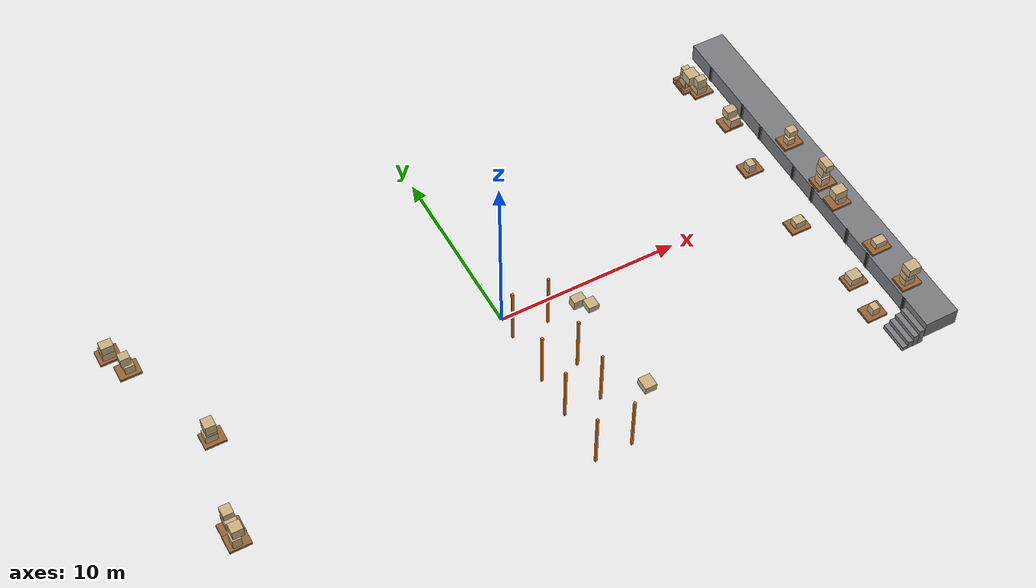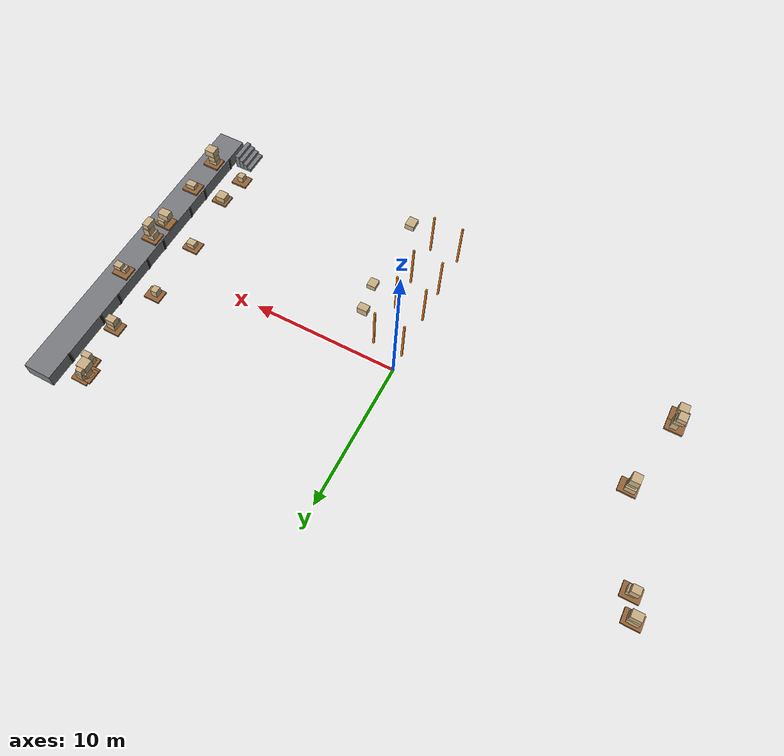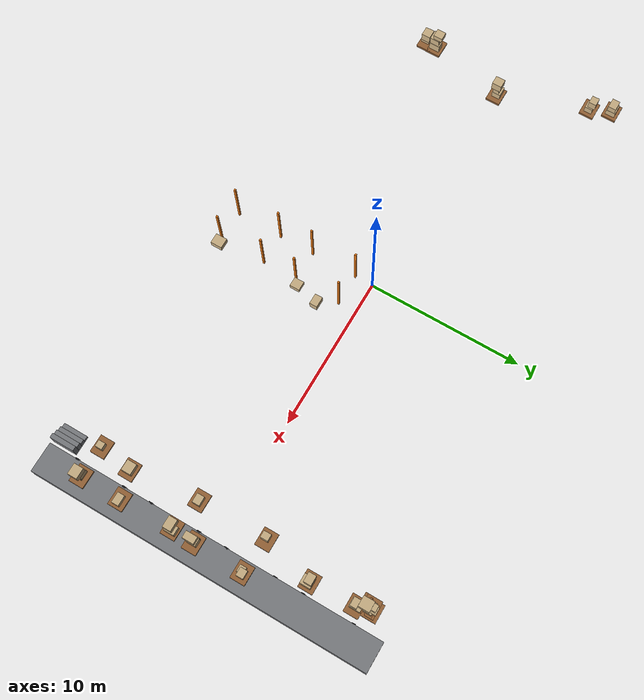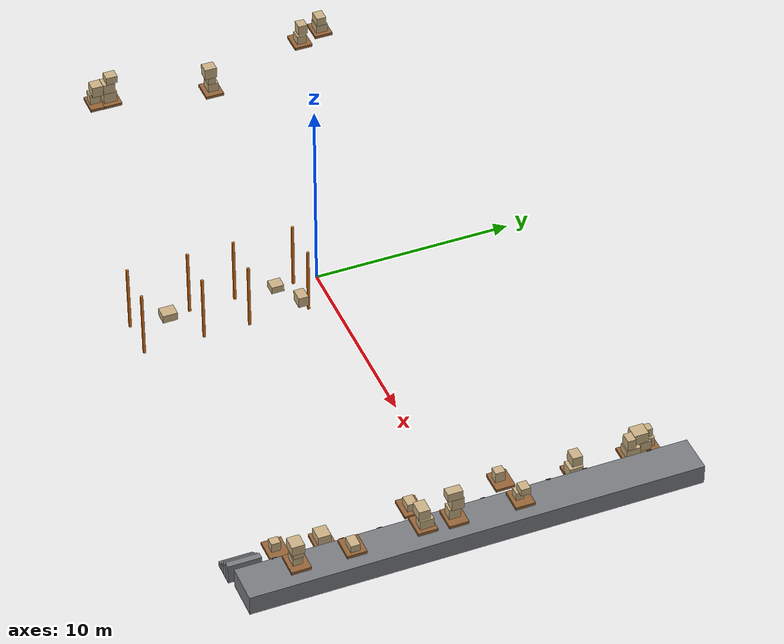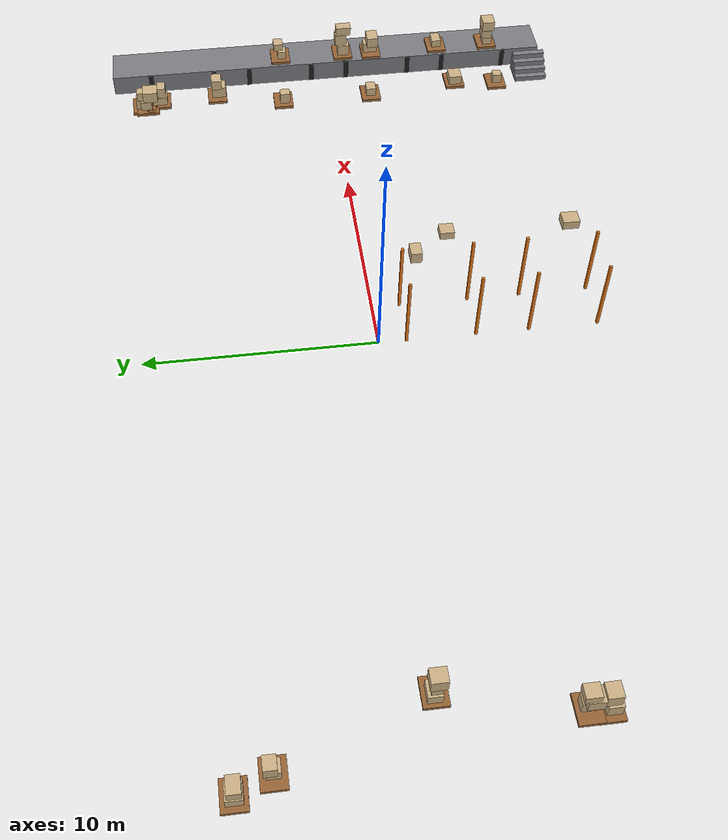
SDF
<sdf version="1.7">
 <world name="default">
  <model name="warehouse_racks">
   <static>1</static>
   <link name="r00_u6_0">
    <pose>0 -9.5 1.75 0 0 0</pose>
    <collision name="c"><geometry><box><size>0.12 0.12 3.5</size></box></geometry></collision>
    <visual name="v">
     <geometry><box><size>0.12 0.12 3.5</size></box></geometry>
     <material>
      <ambient>0.910 0.471 0.086 1</ambient>
      <diffuse>0.910 0.471 0.086 1</diffuse>
      <specular>0.1 0.1 0.1 1</specular>
     </material>
    </visual>
   </link>
   <link name="r00_u6_1">
    <pose>0 -6.5 1.75 0 0 0</pose>
    <collision name="c"><geometry><box><size>0.12 0.12 3.5</size></box></geometry></collision>
    <visual name="v">
     <geometry><box><size>0.12 0.12 3.5</size></box></geometry>
     <material>
      <ambient>0.910 0.471 0.086 1</ambient>
      <diffuse>0.910 0.471 0.086 1</diffuse>
      <specular>0.1 0.1 0.1 1</specular>
     </material>
    </visual>
   </link>
   <link name="r01_u0_0">
    <pose>2 -9.5 1.75 0 0 0</pose>
    <collision name="c"><geometry><box><size>0.12 0.12 3.5</size></box></geometry></collision>
    <visual name="v">
     <geometry><box><size>0.12 0.12 3.5</size></box></geometry>
     <material>
      <ambient>0.910 0.471 0.086 1</ambient>
      <diffuse>0.910 0.471 0.086 1</diffuse>
      <specular>0.1 0.1 0.1 1</specular>
     </material>
    </visual>
   </link>
   <link name="r01_u0_1">
    <pose>2 -6.5 1.75 0 0 0</pose>
    <collision name="c"><geometry><box><size>0.12 0.12 3.5</size></box></geometry></collision>
    <visual name="v">
     <geometry><box><size>0.12 0.12 3.5</size></box></geometry>
     <material>
      <ambient>0.910 0.471 0.086 1</ambient>
      <diffuse>0.910 0.471 0.086 1</diffuse>
      <specular>0.1 0.1 0.1 1</specular>
     </material>
    </visual>
   </link>
   <link name="r10_u6_0">
    <pose>0 -4.2 1.75 0 0 0</pose>
    <collision name="c"><geometry><box><size>0.12 0.12 3.5</size></box></geometry></collision>
    <visual name="v">
     <geometry><box><size>0.12 0.12 3.5</size></box></geometry>
     <material>
      <ambient>0.910 0.471 0.086 1</ambient>
      <diffuse>0.910 0.471 0.086 1</diffuse>
      <specular>0.1 0.1 0.1 1</specular>
     </material>
    </visual>
   </link>
   <link name="r10_u6_1">
    <pose>0 -1.2 1.75 0 0 0</pose>
    <collision name="c"><geometry><box><size>0.12 0.12 3.5</size></box></geometry></collision>
    <visual name="v">
     <geometry><box><size>0.12 0.12 3.5</size></box></geometry>
     <material>
      <ambient>0.910 0.471 0.086 1</ambient>
      <diffuse>0.910 0.471 0.086 1</diffuse>
      <specular>0.1 0.1 0.1 1</specular>
     </material>
    </visual>
   </link>
   <link name="r11_u0_0">
    <pose>2 -4.2 1.75 0 0 0</pose>
    <collision name="c"><geometry><box><size>0.12 0.12 3.5</size></box></geometry></collision>
    <visual name="v">
     <geometry><box><size>0.12 0.12 3.5</size></box></geometry>
     <material>
      <ambient>0.910 0.471 0.086 1</ambient>
      <diffuse>0.910 0.471 0.086 1</diffuse>
      <specular>0.1 0.1 0.1 1</specular>
     </material>
    </visual>
   </link>
   <link name="r11_u0_1">
    <pose>2 -1.2 1.75 0 0 0</pose>
    <collision name="c"><geometry><box><size>0.12 0.12 3.5</size></box></geometry></collision>
    <visual name="v">
     <geometry><box><size>0.12 0.12 3.5</size></box></geometry>
     <material>
      <ambient>0.910 0.471 0.086 1</ambient>
      <diffuse>0.910 0.471 0.086 1</diffuse>
      <specular>0.1 0.1 0.1 1</specular>
     </material>
    </visual>
   </link>
  </model>
  <model name="warehouse_loads">
   <static>1</static>
   <link name="r01L2_0_0_c0">
    <pose>3.20682 -8.63239 3.10335 0 0 0</pose>
    <collision name="c"><geometry><box><size>0.633574 0.723806 0.406697</size></box></geometry></collision>
    <visual name="v">
     <geometry><box><size>0.633574 0.723806 0.406697</size></box></geometry>
     <material>
      <ambient>0.792 0.690 0.518 1</ambient>
      <diffuse>0.792 0.690 0.518 1</diffuse>
      <specular>0.1 0.1 0.1 1</specular>
     </material>
    </visual>
   </link>
   <link name="r11L1_0_1_c0">
    <pose>3.20971 -2.02834 1.92103 0 0 0</pose>
    <collision name="c"><geometry><box><size>0.677243 0.492519 0.542066</size></box></geometry></collision>
    <visual name="v">
     <geometry><box><size>0.677243 0.492519 0.542066</size></box></geometry>
     <material>
      <ambient>0.792 0.690 0.518 1</ambient>
      <diffuse>0.792 0.690 0.518 1</diffuse>
      <specular>0.1 0.1 0.1 1</specular>
     </material>
    </visual>
   </link>
   <link name="r11L2_0_0_c0">
    <pose>3.21088 -3.28658 3.0807 0 0 0</pose>
    <collision name="c"><geometry><box><size>0.570938 0.614382 0.361396</size></box></geometry></collision>
    <visual name="v">
     <geometry><box><size>0.570938 0.614382 0.361396</size></box></geometry>
     <material>
      <ambient>0.792 0.690 0.518 1</ambient>
      <diffuse>0.792 0.690 0.518 1</diffuse>
      <specular>0.1 0.1 0.1 1</specular>
     </material>
    </visual>
   </link>
  </model>
  <model name="warehouse_dock">
   <static>1</static>
   <link name="dock_plat">
    <pose>18.95 0 0.5 0 0 0</pose>
    <collision name="c"><geometry><box><size>1.9 22 1</size></box></geometry></collision>
    <visual name="v">
     <geometry><box><size>1.9 22 1</size></box></geometry>
     <material>
      <ambient>0.478 0.486 0.502 1</ambient>
      <diffuse>0.478 0.486 0.502 1</diffuse>
      <specular>0.1 0.1 0.1 1</specular>
     </material>
    </visual>
   </link>
   <link name="dock_bmp-8-1">
    <pose>18 -9.1 0.5 0 0 0</pose>
    <collision name="c"><geometry><box><size>0.08 0.25 1</size></box></geometry></collision>
    <visual name="v">
     <geometry><box><size>0.08 0.25 1</size></box></geometry>
     <material>
      <ambient>0.110 0.110 0.118 1</ambient>
      <diffuse>0.110 0.110 0.118 1</diffuse>
      <specular>0.1 0.1 0.1 1</specular>
     </material>
    </visual>
   </link>
   <link name="dock_bmp-81">
    <pose>18 -5.9 0.5 0 0 0</pose>
    <collision name="c"><geometry><box><size>0.08 0.25 1</size></box></geometry></collision>
    <visual name="v">
     <geometry><box><size>0.08 0.25 1</size></box></geometry>
     <material>
      <ambient>0.110 0.110 0.118 1</ambient>
      <diffuse>0.110 0.110 0.118 1</diffuse>
      <specular>0.1 0.1 0.1 1</specular>
     </material>
    </visual>
   </link>
   <link name="dock_bmp-2-1">
    <pose>18 -4.1 0.5 0 0 0</pose>
    <collision name="c"><geometry><box><size>0.08 0.25 1</size></box></geometry></collision>
    <visual name="v">
     <geometry><box><size>0.08 0.25 1</size></box></geometry>
     <material>
      <ambient>0.110 0.110 0.118 1</ambient>
      <diffuse>0.110 0.110 0.118 1</diffuse>
      <specular>0.1 0.1 0.1 1</specular>
     </material>
    </visual>
   </link>
   <link name="dock_bmp-21">
    <pose>18 -0.9 0.5 0 0 0</pose>
    <collision name="c"><geometry><box><size>0.08 0.25 1</size></box></geometry></collision>
    <visual name="v">
     <geometry><box><size>0.08 0.25 1</size></box></geometry>
     <material>
      <ambient>0.110 0.110 0.118 1</ambient>
      <diffuse>0.110 0.110 0.118 1</diffuse>
      <specular>0.1 0.1 0.1 1</specular>
     </material>
    </visual>
   </link>
   <link name="dock_bmp2-1">
    <pose>18 0.9 0.5 0 0 0</pose>
    <collision name="c"><geometry><box><size>0.08 0.25 1</size></box></geometry></collision>
    <visual name="v">
     <geometry><box><size>0.08 0.25 1</size></box></geometry>
     <material>
      <ambient>0.110 0.110 0.118 1</ambient>
      <diffuse>0.110 0.110 0.118 1</diffuse>
      <specular>0.1 0.1 0.1 1</specular>
     </material>
    </visual>
   </link>
   <link name="dock_bmp21">
    <pose>18 4.1 0.5 0 0 0</pose>
    <collision name="c"><geometry><box><size>0.08 0.25 1</size></box></geometry></collision>
    <visual name="v">
     <geometry><box><size>0.08 0.25 1</size></box></geometry>
     <material>
      <ambient>0.110 0.110 0.118 1</ambient>
      <diffuse>0.110 0.110 0.118 1</diffuse>
      <specular>0.1 0.1 0.1 1</specular>
     </material>
    </visual>
   </link>
   <link name="dock_bmp8-1">
    <pose>18 5.9 0.5 0 0 0</pose>
    <collision name="c"><geometry><box><size>0.08 0.25 1</size></box></geometry></collision>
    <visual name="v">
     <geometry><box><size>0.08 0.25 1</size></box></geometry>
     <material>
      <ambient>0.110 0.110 0.118 1</ambient>
      <diffuse>0.110 0.110 0.118 1</diffuse>
      <specular>0.1 0.1 0.1 1</specular>
     </material>
    </visual>
   </link>
   <link name="dock_bmp81">
    <pose>18 9.1 0.5 0 0 0</pose>
    <collision name="c"><geometry><box><size>0.08 0.25 1</size></box></geometry></collision>
    <visual name="v">
     <geometry><box><size>0.08 0.25 1</size></box></geometry>
     <material>
      <ambient>0.110 0.110 0.118 1</ambient>
      <diffuse>0.110 0.110 0.118 1</diffuse>
      <specular>0.1 0.1 0.1 1</specular>
     </material>
    </visual>
   </link>
   <link name="dock_step0">
    <pose>17.6 -10.4 0.5 0 0 0</pose>
    <collision name="c"><geometry><box><size>0.3 1.6 1</size></box></geometry></collision>
    <visual name="v">
     <geometry><box><size>0.3 1.6 1</size></box></geometry>
     <material>
      <ambient>0.478 0.486 0.502 1</ambient>
      <diffuse>0.478 0.486 0.502 1</diffuse>
      <specular>0.1 0.1 0.1 1</specular>
     </material>
    </visual>
   </link>
   <link name="dock_step1">
    <pose>17.3 -10.4 0.375 0 0 0</pose>
    <collision name="c"><geometry><box><size>0.3 1.6 0.75</size></box></geometry></collision>
    <visual name="v">
     <geometry><box><size>0.3 1.6 0.75</size></box></geometry>
     <material>
      <ambient>0.478 0.486 0.502 1</ambient>
      <diffuse>0.478 0.486 0.502 1</diffuse>
      <specular>0.1 0.1 0.1 1</specular>
     </material>
    </visual>
   </link>
   <link name="dock_step2">
    <pose>17 -10.4 0.25 0 0 0</pose>
    <collision name="c"><geometry><box><size>0.3 1.6 0.5</size></box></geometry></collision>
    <visual name="v">
     <geometry><box><size>0.3 1.6 0.5</size></box></geometry>
     <material>
      <ambient>0.478 0.486 0.502 1</ambient>
      <diffuse>0.478 0.486 0.502 1</diffuse>
      <specular>0.1 0.1 0.1 1</specular>
     </material>
    </visual>
   </link>
   <link name="dock_step3">
    <pose>16.7 -10.4 0.125 0 0 0</pose>
    <collision name="c"><geometry><box><size>0.3 1.6 0.25</size></box></geometry></collision>
    <visual name="v">
     <geometry><box><size>0.3 1.6 0.25</size></box></geometry>
     <material>
      <ambient>0.478 0.486 0.502 1</ambient>
      <diffuse>0.478 0.486 0.502 1</diffuse>
      <specular>0.1 0.1 0.1 1</specular>
     </material>
    </visual>
   </link>
   <link name="stg0_p">
    <pose>17.047 8.66343 0.075 0 0 0</pose>
    <collision name="c"><geometry><box><size>1.15 0.95 0.15</size></box></geometry></collision>
    <visual name="v">
     <geometry><box><size>1.15 0.95 0.15</size></box></geometry>
     <material>
      <ambient>0.588 0.392 0.216 1</ambient>
      <diffuse>0.588 0.392 0.216 1</diffuse>
      <specular>0.1 0.1 0.1 1</specular>
     </material>
    </visual>
   </link>
   <link name="stg0_c0">
    <pose>16.9686 8.70962 0.361443 0 0 0</pose>
    <collision name="c"><geometry><box><size>0.601709 0.714315 0.422885</size></box></geometry></collision>
    <visual name="v">
     <geometry><box><size>0.601709 0.714315 0.422885</size></box></geometry>
     <material>
      <ambient>0.792 0.690 0.518 1</ambient>
      <diffuse>0.792 0.690 0.518 1</diffuse>
      <specular>0.1 0.1 0.1 1</specular>
     </material>
    </visual>
   </link>
   <link name="stg0_c1">
    <pose>16.9739 8.61213 0.848448 0 0 0</pose>
    <collision name="c"><geometry><box><size>0.556254 0.408975 0.551126</size></box></geometry></collision>
    <visual name="v">
     <geometry><box><size>0.556254 0.408975 0.551126</size></box></geometry>
     <material>
      <ambient>0.792 0.690 0.518 1</ambient>
      <diffuse>0.792 0.690 0.518 1</diffuse>
      <specular>0.1 0.1 0.1 1</specular>
     </material>
    </visual>
   </link>
   <link name="stg1_p">
    <pose>16.3797 2.50066 0.075 0 0 0</pose>
    <collision name="c"><geometry><box><size>1.15 0.95 0.15</size></box></geometry></collision>
    <visual name="v">
     <geometry><box><size>1.15 0.95 0.15</size></box></geometry>
     <material>
      <ambient>0.588 0.392 0.216 1</ambient>
      <diffuse>0.588 0.392 0.216 1</diffuse>
      <specular>0.1 0.1 0.1 1</specular>
     </material>
    </visual>
   </link>
   <link name="stg1_c0">
    <pose>16.2857 2.41996 0.427144 0 0 0</pose>
    <collision name="c"><geometry><box><size>0.435936 0.48766 0.554288</size></box></geometry></collision>
    <visual name="v">
     <geometry><box><size>0.435936 0.48766 0.554288</size></box></geometry>
     <material>
      <ambient>0.792 0.690 0.518 1</ambient>
      <diffuse>0.792 0.690 0.518 1</diffuse>
      <specular>0.1 0.1 0.1 1</specular>
     </material>
    </visual>
   </link>
   <link name="stg2_p">
    <pose>16.9291 -6.40322 0.075 0 0 0</pose>
    <collision name="c"><geometry><box><size>1.15 0.95 0.15</size></box></geometry></collision>
    <visual name="v">
     <geometry><box><size>1.15 0.95 0.15</size></box></geometry>
     <material>
      <ambient>0.588 0.392 0.216 1</ambient>
      <diffuse>0.588 0.392 0.216 1</diffuse>
      <specular>0.1 0.1 0.1 1</specular>
     </material>
    </visual>
   </link>
   <link name="stg2_c0">
    <pose>16.8767 -6.41437 0.382993 0 0 0</pose>
    <collision name="c"><geometry><box><size>0.693066 0.622893 0.465985</size></box></geometry></collision>
    <visual name="v">
     <geometry><box><size>0.693066 0.622893 0.465985</size></box></geometry>
     <material>
      <ambient>0.792 0.690 0.518 1</ambient>
      <diffuse>0.792 0.690 0.518 1</diffuse>
      <specular>0.1 0.1 0.1 1</specular>
     </material>
    </visual>
   </link>
   <link name="stg3_p">
    <pose>16.6156 -8.52797 0.075 0 0 0</pose>
    <collision name="c"><geometry><box><size>1.15 0.95 0.15</size></box></geometry></collision>
    <visual name="v">
     <geometry><box><size>1.15 0.95 0.15</size></box></geometry>
     <material>
      <ambient>0.588 0.392 0.216 1</ambient>
      <diffuse>0.588 0.392 0.216 1</diffuse>
      <specular>0.1 0.1 0.1 1</specular>
     </material>
    </visual>
   </link>
   <link name="stg3_c0">
    <pose>16.6158 -8.57204 0.386699 0 0 0</pose>
    <collision name="c"><geometry><box><size>0.41581 0.443067 0.473398</size></box></geometry></collision>
    <visual name="v">
     <geometry><box><size>0.41581 0.443067 0.473398</size></box></geometry>
     <material>
      <ambient>0.792 0.690 0.518 1</ambient>
      <diffuse>0.792 0.690 0.518 1</diffuse>
      <specular>0.1 0.1 0.1 1</specular>
     </material>
    </visual>
   </link>
   <link name="stg4_p">
    <pose>16.4098 -1.98134 0.075 0 0 0</pose>
    <collision name="c"><geometry><box><size>1.15 0.95 0.15</size></box></geometry></collision>
    <visual name="v">
     <geometry><box><size>1.15 0.95 0.15</size></box></geometry>
     <material>
      <ambient>0.588 0.392 0.216 1</ambient>
      <diffuse>0.588 0.392 0.216 1</diffuse>
      <specular>0.1 0.1 0.1 1</specular>
     </material>
    </visual>
   </link>
   <link name="stg4_c0">
    <pose>16.4436 -1.98893 0.353379 0 0 0</pose>
    <collision name="c"><geometry><box><size>0.589559 0.479602 0.406758</size></box></geometry></collision>
    <visual name="v">
     <geometry><box><size>0.589559 0.479602 0.406758</size></box></geometry>
     <material>
      <ambient>0.792 0.690 0.518 1</ambient>
      <diffuse>0.792 0.690 0.518 1</diffuse>
      <specular>0.1 0.1 0.1 1</specular>
     </material>
    </visual>
   </link>
   <link name="stg5_p">
    <pose>16.657 9.41208 0.075 0 0 0</pose>
    <collision name="c"><geometry><box><size>1.15 0.95 0.15</size></box></geometry></collision>
    <visual name="v">
     <geometry><box><size>1.15 0.95 0.15</size></box></geometry>
     <material>
      <ambient>0.588 0.392 0.216 1</ambient>
      <diffuse>0.588 0.392 0.216 1</diffuse>
      <specular>0.1 0.1 0.1 1</specular>
     </material>
    </visual>
   </link>
   <link name="stg5_c0">
    <pose>16.7249 9.41721 0.377561 0 0 0</pose>
    <collision name="c"><geometry><box><size>0.728153 0.536061 0.455121</size></box></geometry></collision>
    <visual name="v">
     <geometry><box><size>0.728153 0.536061 0.455121</size></box></geometry>
     <material>
      <ambient>0.792 0.690 0.518 1</ambient>
      <diffuse>0.792 0.690 0.518 1</diffuse>
      <specular>0.1 0.1 0.1 1</specular>
     </material>
    </visual>
   </link>
   <link name="stg6_p">
    <pose>16.6561 9.26713 0.075 0 0 0</pose>
    <collision name="c"><geometry><box><size>1.15 0.95 0.15</size></box></geometry></collision>
    <visual name="v">
     <geometry><box><size>1.15 0.95 0.15</size></box></geometry>
     <material>
      <ambient>0.588 0.392 0.216 1</ambient>
      <diffuse>0.588 0.392 0.216 1</diffuse>
      <specular>0.1 0.1 0.1 1</specular>
     </material>
    </visual>
   </link>
   <link name="stg6_c0">
    <pose>16.6432 9.36337 0.366885 0 0 0</pose>
    <collision name="c"><geometry><box><size>0.518492 0.484132 0.433771</size></box></geometry></collision>
    <visual name="v">
     <geometry><box><size>0.518492 0.484132 0.433771</size></box></geometry>
     <material>
      <ambient>0.792 0.690 0.518 1</ambient>
      <diffuse>0.792 0.690 0.518 1</diffuse>
      <specular>0.1 0.1 0.1 1</specular>
     </material>
    </visual>
   </link>
   <link name="stg6_c1">
    <pose>16.7256 9.17784 0.860651 0 0 0</pose>
    <collision name="c"><geometry><box><size>0.681532 0.71947 0.553761</size></box></geometry></collision>
    <visual name="v">
     <geometry><box><size>0.681532 0.71947 0.553761</size></box></geometry>
     <material>
      <ambient>0.792 0.690 0.518 1</ambient>
      <diffuse>0.792 0.690 0.518 1</diffuse>
      <specular>0.1 0.1 0.1 1</specular>
     </material>
    </visual>
   </link>
   <link name="stg7_p">
    <pose>16.7656 9.61508 0.075 0 0 0</pose>
    <collision name="c"><geometry><box><size>1.15 0.95 0.15</size></box></geometry></collision>
    <visual name="v">
     <geometry><box><size>1.15 0.95 0.15</size></box></geometry>
     <material>
      <ambient>0.588 0.392 0.216 1</ambient>
      <diffuse>0.588 0.392 0.216 1</diffuse>
      <specular>0.1 0.1 0.1 1</specular>
     </material>
    </visual>
   </link>
   <link name="stg7_c0">
    <pose>16.7385 9.62124 0.404086 0 0 0</pose>
    <collision name="c"><geometry><box><size>0.48725 0.547748 0.508172</size></box></geometry></collision>
    <visual name="v">
     <geometry><box><size>0.48725 0.547748 0.508172</size></box></geometry>
     <material>
      <ambient>0.792 0.690 0.518 1</ambient>
      <diffuse>0.792 0.690 0.518 1</diffuse>
      <specular>0.1 0.1 0.1 1</specular>
     </material>
    </visual>
   </link>
   <link name="stg7_c1">
    <pose>16.6698 9.54296 0.896269 0 0 0</pose>
    <collision name="c"><geometry><box><size>0.424242 0.551564 0.476194</size></box></geometry></collision>
    <visual name="v">
     <geometry><box><size>0.424242 0.551564 0.476194</size></box></geometry>
     <material>
      <ambient>0.792 0.690 0.518 1</ambient>
      <diffuse>0.792 0.690 0.518 1</diffuse>
      <specular>0.1 0.1 0.1 1</specular>
     </material>
    </visual>
   </link>
   <link name="stg8_p">
    <pose>17.1727 5.80817 0.075 0 0 0</pose>
    <collision name="c"><geometry><box><size>1.15 0.95 0.15</size></box></geometry></collision>
    <visual name="v">
     <geometry><box><size>1.15 0.95 0.15</size></box></geometry>
     <material>
      <ambient>0.588 0.392 0.216 1</ambient>
      <diffuse>0.588 0.392 0.216 1</diffuse>
      <specular>0.1 0.1 0.1 1</specular>
     </material>
    </visual>
   </link>
   <link name="stg8_c0">
    <pose>17.2497 5.71505 0.435547 0 0 0</pose>
    <collision name="c"><geometry><box><size>0.621624 0.683244 0.571093</size></box></geometry></collision>
    <visual name="v">
     <geometry><box><size>0.621624 0.683244 0.571093</size></box></geometry>
     <material>
      <ambient>0.792 0.690 0.518 1</ambient>
      <diffuse>0.792 0.690 0.518 1</diffuse>
      <specular>0.1 0.1 0.1 1</specular>
     </material>
    </visual>
   </link>
   <link name="stg8_c1">
    <pose>17.1274 5.81662 0.980898 0 0 0</pose>
    <collision name="c"><geometry><box><size>0.624551 0.49302 0.51961</size></box></geometry></collision>
    <visual name="v">
     <geometry><box><size>0.624551 0.49302 0.51961</size></box></geometry>
     <material>
      <ambient>0.792 0.690 0.518 1</ambient>
      <diffuse>0.792 0.690 0.518 1</diffuse>
      <specular>0.1 0.1 0.1 1</specular>
     </material>
    </visual>
   </link>
   <link name="onplat0_p">
    <pose>18.7094 2.42516 1.075 0 0 0</pose>
    <collision name="c"><geometry><box><size>1.15 0.95 0.15</size></box></geometry></collision>
    <visual name="v">
     <geometry><box><size>1.15 0.95 0.15</size></box></geometry>
     <material>
      <ambient>0.588 0.392 0.216 1</ambient>
      <diffuse>0.588 0.392 0.216 1</diffuse>
      <specular>0.1 0.1 0.1 1</specular>
     </material>
    </visual>
   </link>
   <link name="onplat0_c0">
    <pose>18.6173 2.34776 1.35458 0 0 0</pose>
    <collision name="c"><geometry><box><size>0.442595 0.404784 0.409163</size></box></geometry></collision>
    <visual name="v">
     <geometry><box><size>0.442595 0.404784 0.409163</size></box></geometry>
     <material>
      <ambient>0.792 0.690 0.518 1</ambient>
      <diffuse>0.792 0.690 0.518 1</diffuse>
      <specular>0.1 0.1 0.1 1</specular>
     </material>
    </visual>
   </link>
   <link name="onplat0_c1">
    <pose>18.8012 2.50937 1.74171 0 0 0</pose>
    <collision name="c"><geometry><box><size>0.521644 0.458442 0.365085</size></box></geometry></collision>
    <visual name="v">
     <geometry><box><size>0.521644 0.458442 0.365085</size></box></geometry>
     <material>
      <ambient>0.792 0.690 0.518 1</ambient>
      <diffuse>0.792 0.690 0.518 1</diffuse>
      <specular>0.1 0.1 0.1 1</specular>
     </material>
    </visual>
   </link>
   <link name="onplat1_p">
    <pose>18.7062 -8.31052 1.075 0 0 0</pose>
    <collision name="c"><geometry><box><size>1.15 0.95 0.15</size></box></geometry></collision>
    <visual name="v">
     <geometry><box><size>1.15 0.95 0.15</size></box></geometry>
     <material>
      <ambient>0.588 0.392 0.216 1</ambient>
      <diffuse>0.588 0.392 0.216 1</diffuse>
      <specular>0.1 0.1 0.1 1</specular>
     </material>
    </visual>
   </link>
   <link name="onplat1_c0">
    <pose>18.6325 -8.3518 1.34049 0 0 0</pose>
    <collision name="c"><geometry><box><size>0.586841 0.451943 0.38098</size></box></geometry></collision>
    <visual name="v">
     <geometry><box><size>0.586841 0.451943 0.38098</size></box></geometry>
     <material>
      <ambient>0.792 0.690 0.518 1</ambient>
      <diffuse>0.792 0.690 0.518 1</diffuse>
      <specular>0.1 0.1 0.1 1</specular>
     </material>
    </visual>
   </link>
   <link name="onplat1_c1">
    <pose>18.6238 -8.30126 1.73641 0 0 0</pose>
    <collision name="c"><geometry><box><size>0.54229 0.500908 0.41085</size></box></geometry></collision>
    <visual name="v">
     <geometry><box><size>0.54229 0.500908 0.41085</size></box></geometry>
     <material>
      <ambient>0.792 0.690 0.518 1</ambient>
      <diffuse>0.792 0.690 0.518 1</diffuse>
      <specular>0.1 0.1 0.1 1</specular>
     </material>
    </visual>
   </link>
   <link name="onplat1_c2">
    <pose>18.7363 -8.37028 2.1881 0 0 0</pose>
    <collision name="c"><geometry><box><size>0.693912 0.613483 0.492545</size></box></geometry></collision>
    <visual name="v">
     <geometry><box><size>0.693912 0.613483 0.492545</size></box></geometry>
     <material>
      <ambient>0.792 0.690 0.518 1</ambient>
      <diffuse>0.792 0.690 0.518 1</diffuse>
      <specular>0.1 0.1 0.1 1</specular>
     </material>
    </visual>
   </link>
   <link name="onplat2_p">
    <pose>18.6795 -0.782331 1.075 0 0 0</pose>
    <collision name="c"><geometry><box><size>1.15 0.95 0.15</size></box></geometry></collision>
    <visual name="v">
     <geometry><box><size>1.15 0.95 0.15</size></box></geometry>
     <material>
      <ambient>0.588 0.392 0.216 1</ambient>
      <diffuse>0.588 0.392 0.216 1</diffuse>
      <specular>0.1 0.1 0.1 1</specular>
     </material>
    </visual>
   </link>
   <link name="onplat2_c0">
    <pose>18.5856 -0.815598 1.42735 0 0 0</pose>
    <collision name="c"><geometry><box><size>0.506295 0.56725 0.554705</size></box></geometry></collision>
    <visual name="v">
     <geometry><box><size>0.506295 0.56725 0.554705</size></box></geometry>
     <material>
      <ambient>0.792 0.690 0.518 1</ambient>
      <diffuse>0.792 0.690 0.518 1</diffuse>
      <specular>0.1 0.1 0.1 1</specular>
     </material>
    </visual>
   </link>
   <link name="onplat2_c1">
    <pose>18.6587 -0.697493 2.00091 0 0 0</pose>
    <collision name="c"><geometry><box><size>0.466081 0.59107 0.592401</size></box></geometry></collision>
    <visual name="v">
     <geometry><box><size>0.466081 0.59107 0.592401</size></box></geometry>
     <material>
      <ambient>0.792 0.690 0.518 1</ambient>
      <diffuse>0.792 0.690 0.518 1</diffuse>
      <specular>0.1 0.1 0.1 1</specular>
     </material>
    </visual>
   </link>
   <link name="onplat2_c2">
    <pose>18.6445 -0.828346 2.5126 0 0 0</pose>
    <collision name="c"><geometry><box><size>0.456803 0.733227 0.430988</size></box></geometry></collision>
    <visual name="v">
     <geometry><box><size>0.456803 0.733227 0.430988</size></box></geometry>
     <material>
      <ambient>0.792 0.690 0.518 1</ambient>
      <diffuse>0.792 0.690 0.518 1</diffuse>
      <specular>0.1 0.1 0.1 1</specular>
     </material>
    </visual>
   </link>
   <link name="onplat3_p">
    <pose>18.703 -5.67718 1.075 0 0 0</pose>
    <collision name="c"><geometry><box><size>1.15 0.95 0.15</size></box></geometry></collision>
    <visual name="v">
     <geometry><box><size>1.15 0.95 0.15</size></box></geometry>
     <material>
      <ambient>0.588 0.392 0.216 1</ambient>
      <diffuse>0.588 0.392 0.216 1</diffuse>
      <specular>0.1 0.1 0.1 1</specular>
     </material>
    </visual>
   </link>
   <link name="onplat3_c0">
    <pose>18.7772 -5.68918 1.33335 0 0 0</pose>
    <collision name="c"><geometry><box><size>0.670245 0.455498 0.3667</size></box></geometry></collision>
    <visual name="v">
     <geometry><box><size>0.670245 0.455498 0.3667</size></box></geometry>
     <material>
      <ambient>0.792 0.690 0.518 1</ambient>
      <diffuse>0.792 0.690 0.518 1</diffuse>
      <specular>0.1 0.1 0.1 1</specular>
     </material>
    </visual>
   </link>
   <link name="onplat4_p">
    <pose>18.5887 -2.24226 1.075 0 0 0</pose>
    <collision name="c"><geometry><box><size>1.15 0.95 0.15</size></box></geometry></collision>
    <visual name="v">
     <geometry><box><size>1.15 0.95 0.15</size></box></geometry>
     <material>
      <ambient>0.588 0.392 0.216 1</ambient>
      <diffuse>0.588 0.392 0.216 1</diffuse>
      <specular>0.1 0.1 0.1 1</specular>
     </material>
    </visual>
   </link>
   <link name="onplat4_c0">
    <pose>18.6865 -2.20672 1.39012 0 0 0</pose>
    <collision name="c"><geometry><box><size>0.52394 0.666996 0.480232</size></box></geometry></collision>
    <visual name="v">
     <geometry><box><size>0.52394 0.666996 0.480232</size></box></geometry>
     <material>
      <ambient>0.792 0.690 0.518 1</ambient>
      <diffuse>0.792 0.690 0.518 1</diffuse>
      <specular>0.1 0.1 0.1 1</specular>
     </material>
    </visual>
   </link>
   <link name="onplat4_c1">
    <pose>18.5167 -2.30176 1.88876 0 0 0</pose>
    <collision name="c"><geometry><box><size>0.726883 0.545863 0.517061</size></box></geometry></collision>
    <visual name="v">
     <geometry><box><size>0.726883 0.545863 0.517061</size></box></geometry>
     <material>
      <ambient>0.792 0.690 0.518 1</ambient>
      <diffuse>0.792 0.690 0.518 1</diffuse>
      <specular>0.1 0.1 0.1 1</specular>
     </material>
    </visual>
   </link>
   <link name="west0_p">
    <pose>-16.7067 -4.6883 0.075 0 0 0</pose>
    <collision name="c"><geometry><box><size>1.15 0.95 0.15</size></box></geometry></collision>
    <visual name="v">
     <geometry><box><size>1.15 0.95 0.15</size></box></geometry>
     <material>
      <ambient>0.588 0.392 0.216 1</ambient>
      <diffuse>0.588 0.392 0.216 1</diffuse>
      <specular>0.1 0.1 0.1 1</specular>
     </material>
    </visual>
   </link>
   <link name="west0_c0">
    <pose>-16.6075 -4.73457 0.440255 0 0 0</pose>
    <collision name="c"><geometry><box><size>0.433268 0.699692 0.580509</size></box></geometry></collision>
    <visual name="v">
     <geometry><box><size>0.433268 0.699692 0.580509</size></box></geometry>
     <material>
      <ambient>0.792 0.690 0.518 1</ambient>
      <diffuse>0.792 0.690 0.518 1</diffuse>
      <specular>0.1 0.1 0.1 1</specular>
     </material>
    </visual>
   </link>
   <link name="west0_c1">
    <pose>-16.724 -4.76763 0.993447 0 0 0</pose>
    <collision name="c"><geometry><box><size>0.620734 0.621247 0.525875</size></box></geometry></collision>
    <visual name="v">
     <geometry><box><size>0.620734 0.621247 0.525875</size></box></geometry>
     <material>
      <ambient>0.792 0.690 0.518 1</ambient>
      <diffuse>0.792 0.690 0.518 1</diffuse>
      <specular>0.1 0.1 0.1 1</specular>
     </material>
    </visual>
   </link>
   <link name="west0_c2">
    <pose>-16.7272 -4.58972 1.44607 0 0 0</pose>
    <collision name="c"><geometry><box><size>0.543646 0.592481 0.379362</size></box></geometry></collision>
    <visual name="v">
     <geometry><box><size>0.543646 0.592481 0.379362</size></box></geometry>
     <material>
      <ambient>0.792 0.690 0.518 1</ambient>
      <diffuse>0.792 0.690 0.518 1</diffuse>
      <specular>0.1 0.1 0.1 1</specular>
     </material>
    </visual>
   </link>
   <link name="west1_p">
    <pose>-18.1361 7.34888 0.075 0 0 0</pose>
    <collision name="c"><geometry><box><size>1.15 0.95 0.15</size></box></geometry></collision>
    <visual name="v">
     <geometry><box><size>1.15 0.95 0.15</size></box></geometry>
     <material>
      <ambient>0.588 0.392 0.216 1</ambient>
      <diffuse>0.588 0.392 0.216 1</diffuse>
      <specular>0.1 0.1 0.1 1</specular>
     </material>
    </visual>
   </link>
   <link name="west1_c0">
    <pose>-18.1457 7.34046 0.372445 0 0 0</pose>
    <collision name="c"><geometry><box><size>0.705466 0.612567 0.444891</size></box></geometry></collision>
    <visual name="v">
     <geometry><box><size>0.705466 0.612567 0.444891</size></box></geometry>
     <material>
      <ambient>0.792 0.690 0.518 1</ambient>
      <diffuse>0.792 0.690 0.518 1</diffuse>
      <specular>0.1 0.1 0.1 1</specular>
     </material>
    </visual>
   </link>
   <link name="west1_c1">
    <pose>-18.1251 7.32578 0.818726 0 0 0</pose>
    <collision name="c"><geometry><box><size>0.653071 0.502522 0.447671</size></box></geometry></collision>
    <visual name="v">
     <geometry><box><size>0.653071 0.502522 0.447671</size></box></geometry>
     <material>
      <ambient>0.792 0.690 0.518 1</ambient>
      <diffuse>0.792 0.690 0.518 1</diffuse>
      <specular>0.1 0.1 0.1 1</specular>
     </material>
    </visual>
   </link>
   <link name="west2_p">
    <pose>-17.6018 6.02864 0.075 0 0 0</pose>
    <collision name="c"><geometry><box><size>1.15 0.95 0.15</size></box></geometry></collision>
    <visual name="v">
     <geometry><box><size>1.15 0.95 0.15</size></box></geometry>
     <material>
      <ambient>0.588 0.392 0.216 1</ambient>
      <diffuse>0.588 0.392 0.216 1</diffuse>
      <specular>0.1 0.1 0.1 1</specular>
     </material>
    </visual>
   </link>
   <link name="west2_c0">
    <pose>-17.5412 6.01577 0.392109 0 0 0</pose>
    <collision name="c"><geometry><box><size>0.533236 0.505008 0.484219</size></box></geometry></collision>
    <visual name="v">
     <geometry><box><size>0.533236 0.505008 0.484219</size></box></geometry>
     <material>
      <ambient>0.792 0.690 0.518 1</ambient>
      <diffuse>0.792 0.690 0.518 1</diffuse>
      <specular>0.1 0.1 0.1 1</specular>
     </material>
    </visual>
   </link>
   <link name="west2_c1">
    <pose>-17.6358 6.12243 0.911923 0 0 0</pose>
    <collision name="c"><geometry><box><size>0.53195 0.481178 0.555409</size></box></geometry></collision>
    <visual name="v">
     <geometry><box><size>0.53195 0.481178 0.555409</size></box></geometry>
     <material>
      <ambient>0.792 0.690 0.518 1</ambient>
      <diffuse>0.792 0.690 0.518 1</diffuse>
      <specular>0.1 0.1 0.1 1</specular>
     </material>
    </visual>
   </link>
   <link name="west3_p">
    <pose>-16.7149 -5.40429 0.075 0 0 0</pose>
    <collision name="c"><geometry><box><size>1.15 0.95 0.15</size></box></geometry></collision>
    <visual name="v">
     <geometry><box><size>1.15 0.95 0.15</size></box></geometry>
     <material>
      <ambient>0.588 0.392 0.216 1</ambient>
      <diffuse>0.588 0.392 0.216 1</diffuse>
      <specular>0.1 0.1 0.1 1</specular>
     </material>
    </visual>
   </link>
   <link name="west3_c0">
    <pose>-16.8128 -5.4948 0.438822 0 0 0</pose>
    <collision name="c"><geometry><box><size>0.471508 0.549257 0.577643</size></box></geometry></collision>
    <visual name="v">
     <geometry><box><size>0.471508 0.549257 0.577643</size></box></geometry>
     <material>
      <ambient>0.792 0.690 0.518 1</ambient>
      <diffuse>0.792 0.690 0.518 1</diffuse>
      <specular>0.1 0.1 0.1 1</specular>
     </material>
    </visual>
   </link>
   <link name="west3_c1">
    <pose>-16.6602 -5.39659 1.01768 0 0 0</pose>
    <collision name="c"><geometry><box><size>0.597727 0.574068 0.580078</size></box></geometry></collision>
    <visual name="v">
     <geometry><box><size>0.597727 0.574068 0.580078</size></box></geometry>
     <material>
      <ambient>0.792 0.690 0.518 1</ambient>
      <diffuse>0.792 0.690 0.518 1</diffuse>
      <specular>0.1 0.1 0.1 1</specular>
     </material>
    </visual>
   </link>
   <link name="west4_p">
    <pose>-15.5052 0.366406 0.075 0 0 0</pose>
    <collision name="c"><geometry><box><size>1.15 0.95 0.15</size></box></geometry></collision>
    <visual name="v">
     <geometry><box><size>1.15 0.95 0.15</size></box></geometry>
     <material>
      <ambient>0.588 0.392 0.216 1</ambient>
      <diffuse>0.588 0.392 0.216 1</diffuse>
      <specular>0.1 0.1 0.1 1</specular>
     </material>
    </visual>
   </link>
   <link name="west4_c0">
    <pose>-15.597 0.401652 0.383031 0 0 0</pose>
    <collision name="c"><geometry><box><size>0.65449 0.55052 0.466062</size></box></geometry></collision>
    <visual name="v">
     <geometry><box><size>0.65449 0.55052 0.466062</size></box></geometry>
     <material>
      <ambient>0.792 0.690 0.518 1</ambient>
      <diffuse>0.792 0.690 0.518 1</diffuse>
      <specular>0.1 0.1 0.1 1</specular>
     </material>
    </visual>
   </link>
   <link name="west4_c1">
    <pose>-15.5593 0.34831 0.799596 0 0 0</pose>
    <collision name="c"><geometry><box><size>0.558573 0.403633 0.367067</size></box></geometry></collision>
    <visual name="v">
     <geometry><box><size>0.558573 0.403633 0.367067</size></box></geometry>
     <material>
      <ambient>0.792 0.690 0.518 1</ambient>
      <diffuse>0.792 0.690 0.518 1</diffuse>
      <specular>0.1 0.1 0.1 1</specular>
     </material>
    </visual>
   </link>
   <link name="west4_c2">
    <pose>-15.5743 0.304049 1.27418 0 0 0</pose>
    <collision name="c"><geometry><box><size>0.575318 0.626988 0.582103</size></box></geometry></collision>
    <visual name="v">
     <geometry><box><size>0.575318 0.626988 0.582103</size></box></geometry>
     <material>
      <ambient>0.792 0.690 0.518 1</ambient>
      <diffuse>0.792 0.690 0.518 1</diffuse>
      <specular>0.1 0.1 0.1 1</specular>
     </material>
    </visual>
   </link>
  </model>
 </world>
</sdf>
